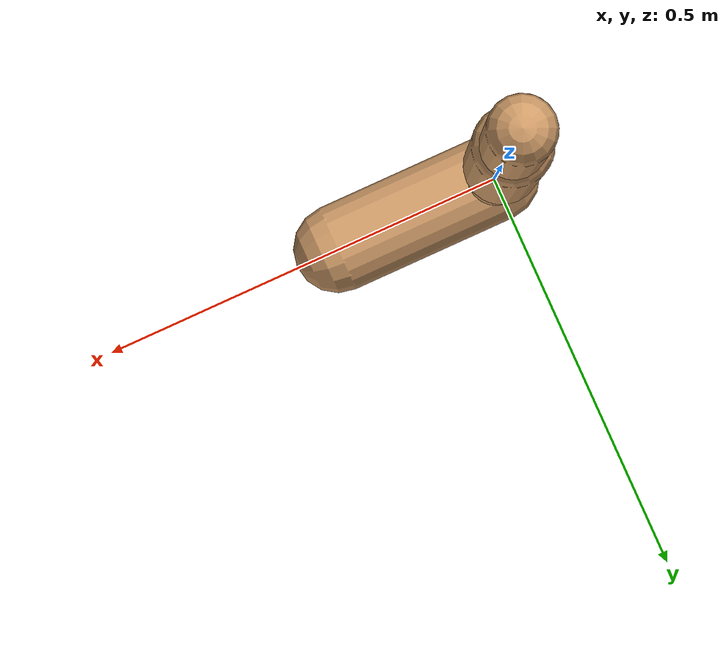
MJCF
<mujoco model="walker2d">
  <compiler angle="degree" coordinate="global" inertiafromgeom="true" />
  <default>
    <joint armature="0.01" damping=".1" limited="true" />
    <geom conaffinity="0" condim="3" contype="1" density="1000" friction="0.8 .1 .1" rgba="0.8 0.6 .4 1" />
  </default>
  <option integrator="RK4" timestep="0.002" />
  <worldbody>

    <body name="torso" pos="0 0 0.26185654536596936">
      <joint armature="0" axis="1 0 0" damping="0" limited="false" name="ignorex" pos="0 0 0" stiffness="0" type="slide" />
      <joint armature="0" axis="0 0 1" damping="0" limited="false" name="ignorez" pos="0 0 0" ref="1.25" stiffness="0" type="slide" />
      <joint armature="0" axis="0 1 0" damping="0" limited="false" name="ignorey" pos="0 0 0" stiffness="0" type="hinge" />
      <geom fromto="0 0 1.45 0 0 1.05" name="torso_geom" size="0.03615671002745778" type="capsule" />
      <body name="thigh">
        <joint axis="0 -1 0" name="thigh_joint" pos="0 0 1.05" range="-150 0" type="hinge" />
        <geom fromto="0.0 0.0 1.05 0.0 0.0 0.47596268903717237" name="thigh_geom" size="0.043852296058390125" type="capsule" />
        <body name="leg" pos="0.0 0.0 -0.12403731096282761">
          <joint axis="0 -1 0" name="leg_joint" pos="0 0 0.6" range="-150 0" type="hinge" />
          <geom fromto="0.0 0.0 0.6 0.0 0.0 -0.03781923440314175" name="leg_geom" size="0.0350818368467121" type="capsule" />
          <body name="foot" pos="0.0 0.0 -0.13781923440314175">
            <joint axis="0 -1 0" name="foot_joint" pos="0 0 0.1" range="-45 45" type="hinge" />
            <geom fromto="-0.0 0.0 0.1 0.20397891781040003 0.0 0.1" name="foot_geom" size="0.052226926263647624" type="capsule" />
          </body>
        </body>
      </body>

      <body name="thigh_left">
        <joint axis="0 -1 0" name="thigh_left_joint" pos="0 0 1.05" range="-150 0" type="hinge" />
        <geom fromto="0.0 0.0 1.05 0.0 0.0 0.47596268903717237" name="thigh_left_geom" rgba=".7 .3 .6 1" size="0.043852296058390125" type="capsule" />
        <body name="leg_left" pos="0.0 0.0 -0.12403731096282761">
          <joint axis="0 -1 0" name="leg_left_joint" pos="0 0 0.6" range="-150 0" type="hinge" />
          <geom fromto="0.0 0.0 0.6 0.0 0.0 -0.03781923440314175" name="leg_left_geom" rgba=".7 .3 .6 1" size="0.0350818368467121" type="capsule" />
          <body name="foot_left" pos="0.0 0.0 -0.13781923440314175">
            <joint axis="0 -1 0" name="foot_left_joint" pos="0 0 0.1" range="-45 45" type="hinge" />
            <geom fromto="-0.0 0.0 0.1 0.20397891781040003 0.0 0.1" name="foot_left_geom" rgba=".7 .3 .6 1" size="0.052226926263647624" type="capsule" />
          </body>
        </body>
      </body>
    </body>
  </worldbody>
  <actuator>

    <motor ctrllimited="true" ctrlrange="-1.0 1.0" gear="100" joint="thigh_joint" />
    <motor ctrllimited="true" ctrlrange="-1.0 1.0" gear="100" joint="leg_joint" />
    <motor ctrllimited="true" ctrlrange="-1.0 1.0" gear="100" joint="foot_joint" />
    <motor ctrllimited="true" ctrlrange="-1.0 1.0" gear="100" joint="thigh_left_joint" />
    <motor ctrllimited="true" ctrlrange="-1.0 1.0" gear="100" joint="leg_left_joint" />
    <motor ctrllimited="true" ctrlrange="-1.0 1.0" gear="100" joint="foot_left_joint" />

  </actuator>
</mujoco>
